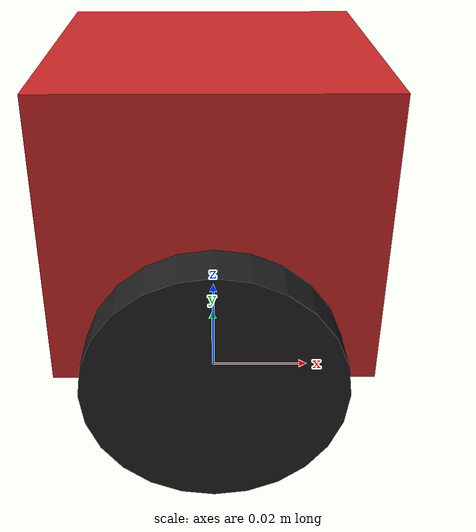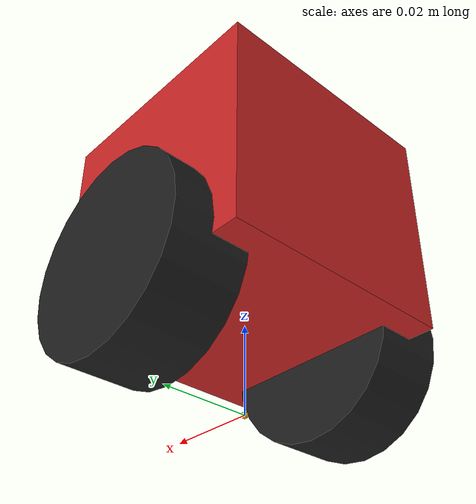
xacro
<?xml version="1.0"?>
<robot name="ros_m5bala" xmlns:xacro="http://www.ros.org/wiki/xacro">
  <xacro:property name="PI" value="3.1415926535897931"/>

  <xacro:include filename="$(find ros_m5bala_description)/urdf/materials.xacro" />

  <link name="base_footprint">
    <inertial>
      <mass value="0.0001"/>
      <origin xyz="0 0 0"/>
      <inertia ixx="0.0001" ixy="0.0" ixz="0.0" iyy="0.0001" iyz="0.0" izz="0.0001"/>
    </inertial>
    <visual>
      <origin rpy="0 0 0" xyz="0 0 0"/>
      <geometry>
        <box size="0.001 0.001 0.001"/>
      </geometry>
    </visual>
  </link>

  <joint name="base_footprint_joint" type="fixed">
    <origin xyz="0 0 0.02178" rpy="0 0 0"/>
    <parent link="base_footprint"/>
    <child link="base_link"/>
  </joint>

  <!-- Base Link -->
  <link name="base_link">
    <!-- coll -->
    <collision>
      <origin xyz="0 0 0" rpy="0 0 0"/>
      <geometry>
        <box size=".055 .055 .050"/>
      </geometry>
    </collision>
    <!-- visual -->
    <visual>
      <origin xyz="0 0 0.02178" rpy="0 0 0"/>
      <geometry>
	      <box size=".055 .055 .050"/>
      </geometry>
      <material name="red"/>
    </visual>
    <!-- inertial -->
    <inertial>
       <mass value="0.1" />
       <origin xyz="0 0 0" rpy="0 0 0"/>
       <inertia ixx="1" ixy="0" ixz="0" iyy="1" iyz="0" izz="1" />
    </inertial>
  </link>

  <joint name="camera_frame_joint" type="fixed">
    <origin xyz="0 0 0.2" rpy="0 0 0"/>
    <parent link="base_link"/>
    <child link="camera_frame"/>
  </joint>

  <link name="camera_frame">
  </link>

  <link name="left_wheel">
    <collision name="collision">
      <origin xyz="0 0.0 0" rpy="0 1.5707 1.5707"/>
      <geometry>
         <cylinder  length="0.01713" radius="0.02178"/>
      </geometry>
    </collision>
    <visual name="visual">
      <origin xyz="0 0.0 0" rpy="0 1.5707 1.5707"/>
      <geometry>
        <cylinder  length="0.01713" radius="0.02178"/>
      </geometry>
      <material name="black"/>
    </visual>
    <inertial>
      <mass value="1" />
      <origin xyz="0 0.0 0"/>
      <inertia ixx="0.1" ixy="0" ixz="0" iyy="0.1" iyz="0" izz="0.1" />
    </inertial>
  </link>

  <joint type="revolute" name="left_wheel_hinge">
    <origin xyz="0 0.0275 0" rpy="0 0 0"/>
    <child link="left_wheel">left_wheel</child>
    <parent link="base_link">base_link</parent>
    <axis xyz="0 1 0"/>
    <limit effort="100" velocity="100.0"  lower="-5000" upper="5000" />
  </joint>

  <link name="right_wheel">
    <collision name="collision">
      <origin xyz="0 0.0 0" rpy="0 1.5707 1.5707"/>
      <geometry>
         <cylinder  length="0.01713" radius="0.02178"/>
      </geometry>
    </collision>
    <visual name="visual">
      <origin xyz="0 0.0 0" rpy="0 1.5707 1.5707"/>
      <geometry>
        <cylinder  length="0.01713" radius="0.02178"/>
      </geometry>
      <material name="black"/>
    </visual>
    <inertial>
      <mass value="1" />
      <origin xyz="0 0.0 0"/>
      <inertia ixx="0.1" ixy="0" ixz="0" iyy="0.1" iyz="0" izz="0.1" />
    </inertial>
  </link>

  <joint type="revolute" name="right_wheel_hinge">
    <origin xyz="0 -0.0275 0" rpy="0 0 0"/>
    <child link="right_wheel">right_wheel</child>
    <parent link="base_link">base_link</parent>
    <axis xyz="0 1 0"/>
    <limit effort="100" velocity="100.0"  lower="-5000" upper="5000" />
  </joint>

  <link name="imu_link"/>
  <joint name="imu_joint" type="fixed">
    <origin xyz="0 0 0.035" rpy="0 0 0" />
    <parent link="base_link" />
    <child link="imu_link" />
  </joint>

</robot>
